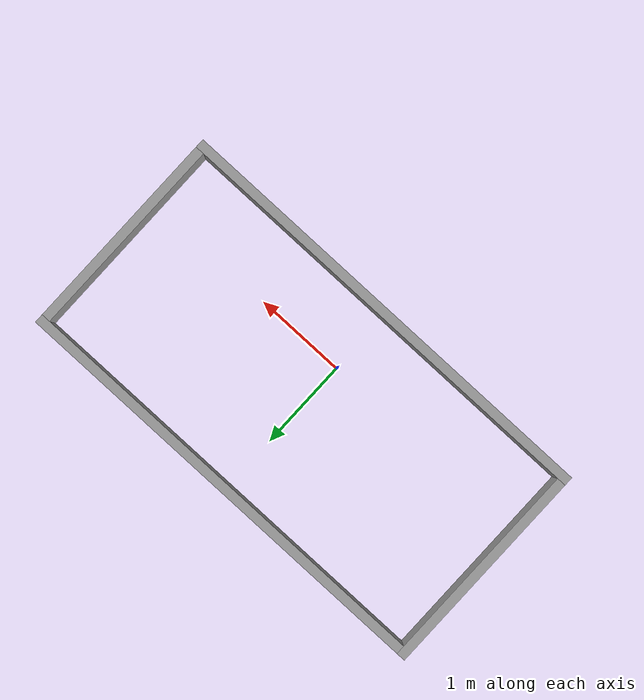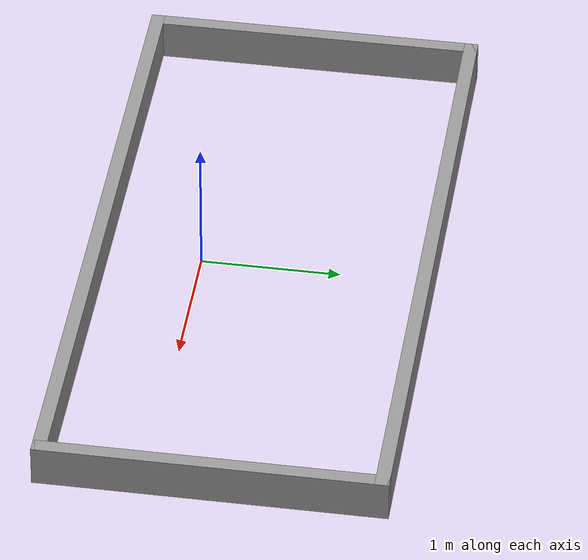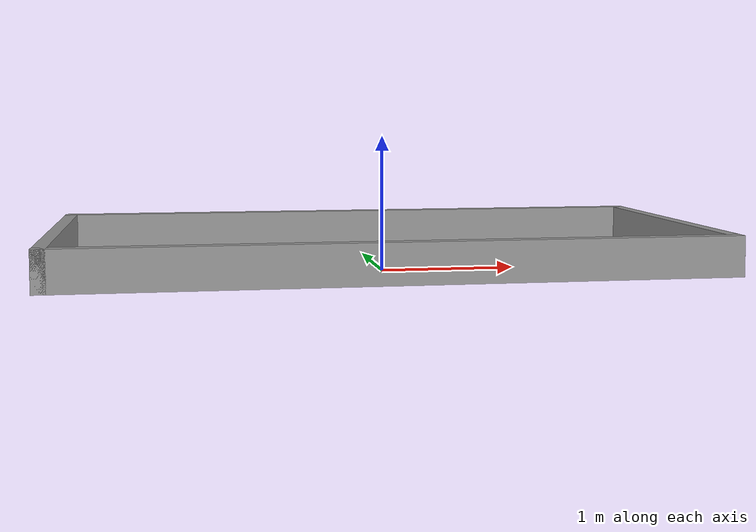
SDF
<?xml version='1.0'?>
<sdf version='1.7'>
  <model name='parking_lot'>
    <pose>0.03 0.458 0 0 -0 0</pose>
    <link name='Wall_13'>
      <collision name='Wall_13_Collision'>
        <geometry>
          <box>
            <size>4.94967 0.1 0.3</size>
          </box>
        </geometry>
        <pose>0 0 0.15 0 -0 0</pose>
      </collision>
      <visual name='Wall_13_Visual'>
        <pose>0 0 0.15 0 -0 0</pose>
        <geometry>
          <box>
            <size>4.94967 0.1 0.3</size>
          </box>
        </geometry>
        <material>
          <script>
            <uri>file://media/materials/scripts/gazebo.material</uri>
            <name>Gazebo/Grey</name>
          </script>
          <ambient>1 1 1 1</ambient>
        </material>
        <meta>
          <layer>0</layer>
        </meta>
      </visual>
      <pose>0 -1.175 0 0 -0 0</pose>
    </link>
    <link name='Wall_18'>
      <collision name='Wall_18_Collision'>
        <geometry>
          <box>
            <size>2.45 0.1 0.3</size>
          </box>
        </geometry>
        <pose>0 0 0.15 0 -0 0</pose>
      </collision>
      <visual name='Wall_18_Visual'>
        <pose>0 0 0.15 0 -0 0</pose>
        <geometry>
          <box>
            <size>2.45 0.1 0.3</size>
          </box>
        </geometry>
        <material>
          <script>
            <uri>file://media/materials/scripts/gazebo.material</uri>
            <name>Gazebo/Grey</name>
          </script>
          <ambient>1 1 1 1</ambient>
        </material>
        <meta>
          <layer>0</layer>
        </meta>
      </visual>
      <pose>-2.425 0 0 0 -0 1.5708</pose>
    </link>
    <link name='Wall_19'>
      <collision name='Wall_19_Collision'>
        <geometry>
          <box>
            <size>4.95 0.1 0.3</size>
          </box>
        </geometry>
        <pose>0 0 0.15 0 -0 0</pose>
      </collision>
      <visual name='Wall_19_Visual'>
        <pose>0 0 0.15 0 -0 0</pose>
        <geometry>
          <box>
            <size>4.95 0.1 0.3</size>
          </box>
        </geometry>
        <material>
          <script>
            <uri>file://media/materials/scripts/gazebo.material</uri>
            <name>Gazebo/Grey</name>
          </script>
          <ambient>1 1 1 1</ambient>
        </material>
        <meta>
          <layer>0</layer>
        </meta>
      </visual>
      <pose>0 1.175 0 0 -0 0</pose>
    </link>
    <link name='Wall_20'>
      <collision name='Wall_20_Collision'>
        <geometry>
          <box>
            <size>2.45 0.1 0.3</size>
          </box>
        </geometry>
        <pose>0 0 0.15 0 -0 0</pose>
      </collision>
      <visual name='Wall_20_Visual'>
        <pose>0 0 0.15 0 -0 0</pose>
        <geometry>
          <box>
            <size>2.45 0.1 0.3</size>
          </box>
        </geometry>
        <material>
          <script>
            <uri>file://media/materials/scripts/gazebo.material</uri>
            <name>Gazebo/Grey</name>
          </script>
          <ambient>1 1 1 1</ambient>
        </material>
        <meta>
          <layer>0</layer>
        </meta>
      </visual>
      <pose>2.425 0 0 0 -0 -1.5708</pose>
    </link>
    <static>1</static>
  </model>
</sdf>
